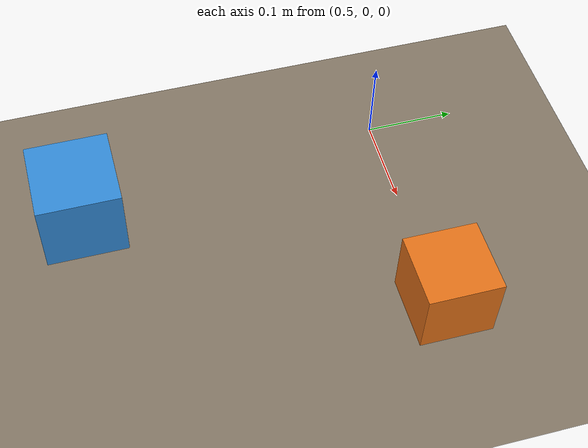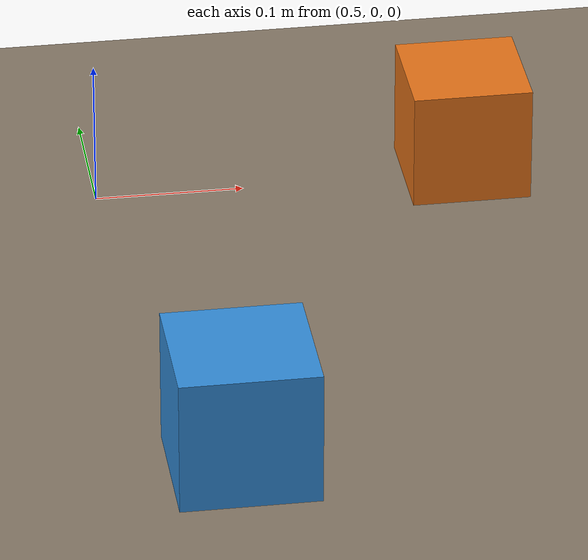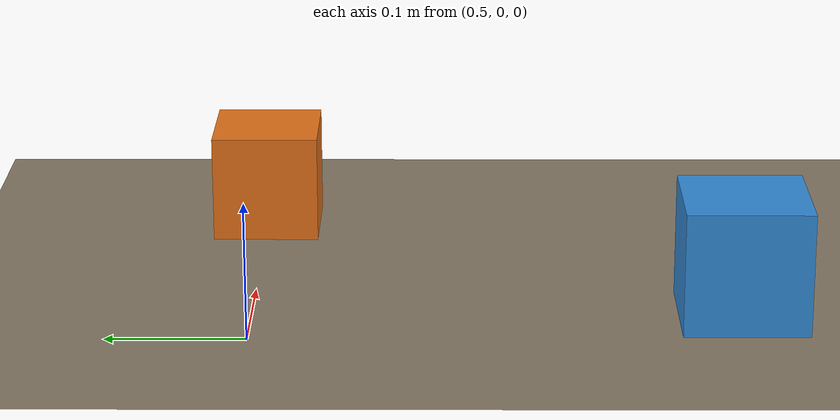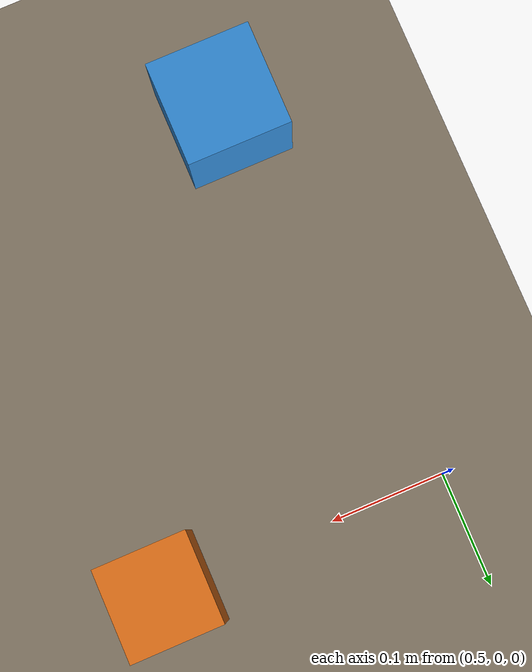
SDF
<?xml version="1.0" ?>
<sdf version="1.9">
  <world name="arm_lab">

    <physics name="1ms" type="ignored">
      <max_step_size>0.001</max_step_size>
      <real_time_factor>1.0</real_time_factor>
    </physics>
    <gravity>0 0 -9.81</gravity>

    <plugin filename="gz-sim-physics-system" name="gz::sim::systems::Physics"/>
    <plugin filename="gz-sim-user-commands-system"
            name="gz::sim::systems::UserCommands"/>
    <plugin filename="gz-sim-scene-broadcaster-system"
            name="gz::sim::systems::SceneBroadcaster"/>
    <plugin filename="gz-sim-contact-system" name="gz::sim::systems::Contact"/>
    <plugin filename="gz-sim-forcetorque-system"
            name="gz::sim::systems::ForceTorque"/>

    <scene>
      <ambient>0.55 0.55 0.55 1</ambient>
      <background>0.55 0.62 0.72 1</background>
      <grid>true</grid>
      <shadows>true</shadows>
    </scene>

    <light type="directional" name="sun">
      <cast_shadows>true</cast_shadows>
      <pose>0 0 10 0 0 0</pose>
      <diffuse>0.9 0.9 0.9 1</diffuse>
      <specular>0.25 0.25 0.25 1</specular>
      <direction>-0.4 0.3 -0.9</direction>
    </light>

    <model name="ground_plane">
      <static>true</static>
      <link name="link">
        <collision name="collision">
          <geometry><plane><normal>0 0 1</normal><size>60 60</size></plane></geometry>
          <surface><friction><ode><mu>1.0</mu><mu2>1.0</mu2></ode></friction></surface>
        </collision>
        <visual name="visual">
          <geometry><plane><normal>0 0 1</normal><size>60 60</size></plane></geometry>
          <material>
            <ambient>0.42 0.38 0.32 1</ambient>
            <diffuse>0.52 0.47 0.40 1</diffuse>
          </material>
        </visual>
      </link>
    </model>

    <!-- Sample targets. Grab them to check the payload figures for real. -->
    <model name="sample_2kg">
      <pose>0.75 0.0 0.04 0 0 0</pose>
      <link name="link">
        <inertial>
          <mass>2.0</mass>
          <inertia><ixx>0.00107</ixx><iyy>0.00107</iyy><izz>0.00107</izz>
                   <ixy>0</ixy><ixz>0</ixz><iyz>0</iyz></inertia>
        </inertial>
        <collision name="collision">
          <geometry><box><size>0.08 0.08 0.08</size></box></geometry>
          <surface><friction><ode><mu>1.4</mu><mu2>1.4</mu2></ode></friction></surface>
        </collision>
        <visual name="visual">
          <geometry><box><size>0.08 0.08 0.08</size></box></geometry>
          <material>
            <ambient>0.75 0.35 0.08 1</ambient><diffuse>0.9 0.45 0.1 1</diffuse>
          </material>
        </visual>
      </link>
    </model>

    <model name="sample_3kg">
      <pose>0.55 -0.35 0.045 0 0 0</pose>
      <link name="link">
        <inertial>
          <mass>3.0</mass>
          <inertia><ixx>0.00203</ixx><iyy>0.00203</iyy><izz>0.00203</izz>
                   <ixy>0</ixy><ixz>0</ixz><iyz>0</iyz></inertia>
        </inertial>
        <collision name="collision">
          <geometry><box><size>0.09 0.09 0.09</size></box></geometry>
          <surface><friction><ode><mu>1.4</mu><mu2>1.4</mu2></ode></friction></surface>
        </collision>
        <visual name="visual">
          <geometry><box><size>0.09 0.09 0.09</size></box></geometry>
          <material>
            <ambient>0.15 0.45 0.7 1</ambient><diffuse>0.2 0.55 0.85 1</diffuse>
          </material>
        </visual>
      </link>
    </model>

  </world>
</sdf>
